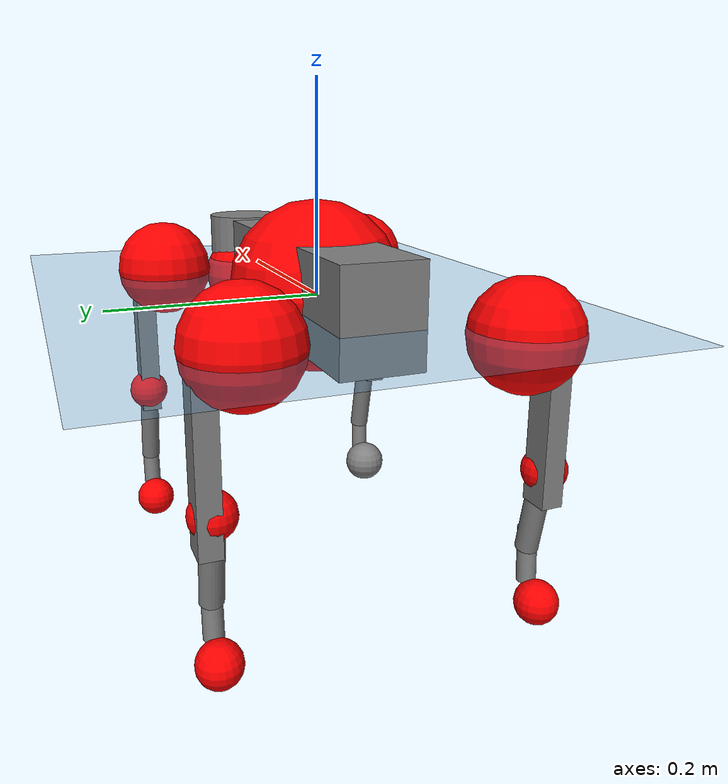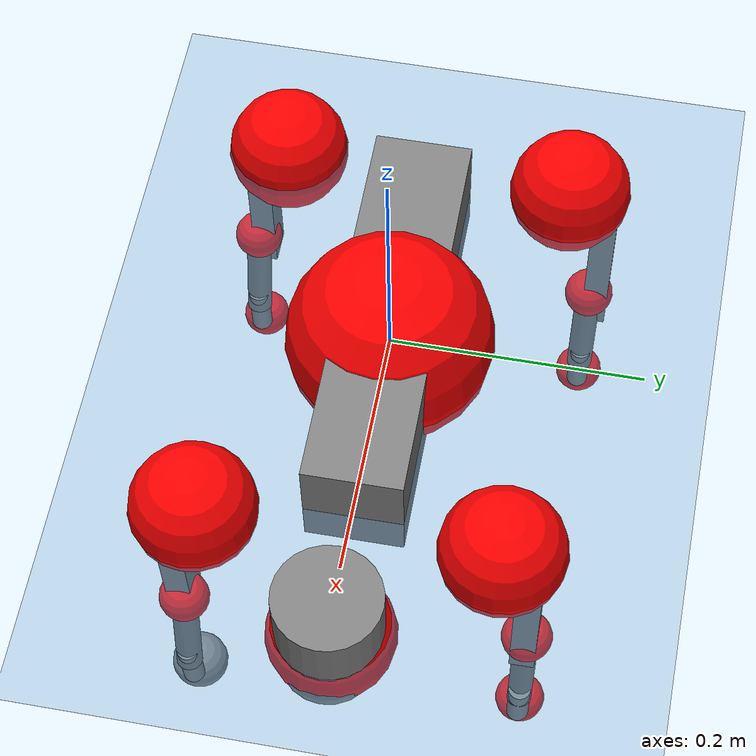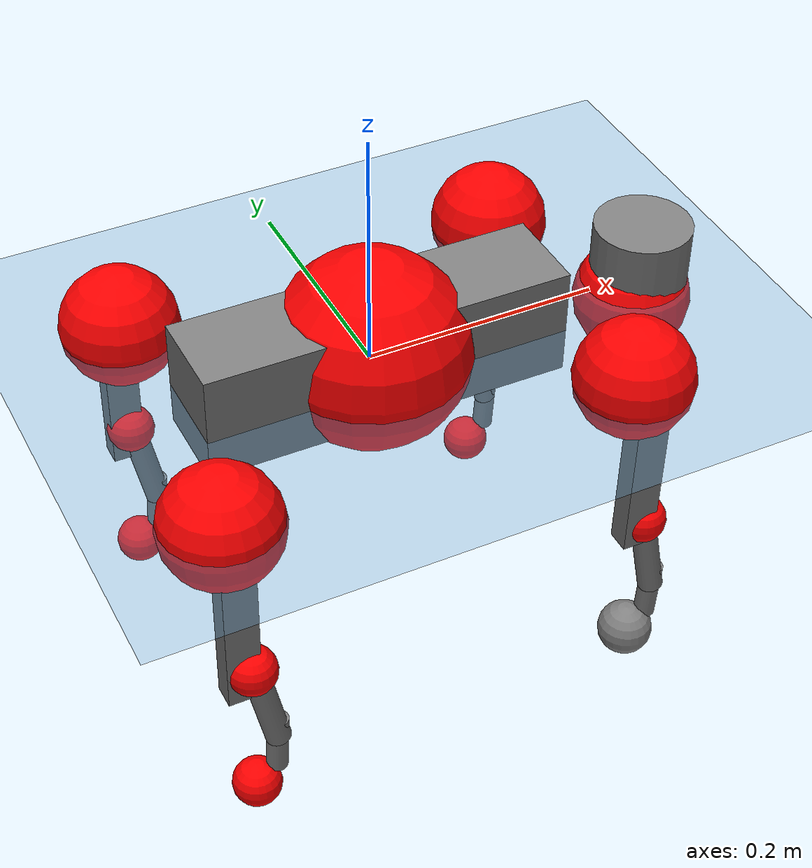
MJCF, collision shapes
<mujoco model="go2">
  <compiler angle="radian" assetdir="assets" balanceinertia="true" inertiafromgeom="false"/>

  <option timestep="0.005" density="1.2" viscosity="2e-05"/>

  <size nkey="1"/>

  <visual>
    <quality shadowsize="8192"/>
    <map shadowclip="0.5"/>
  </visual>

  <default>
    <default class="/">
      <geom contype="0" conaffinity="0" group="1" solref="-1000 -80"/>
      <site size="0.01 0.005 0.005" group="5"/>
      <general forcelimited="true" biastype="affine" gainprm="20" biasprm="0 -20 -0.5"/>
      <default class="go2">
        <joint armature="0.01" damping="0.01" frictionloss="0.2"/>
        <geom condim="1" margin="0.001"/>
        <default class="visual">
          <geom type="mesh" group="2"/>
        </default>
        <default class="collision">
          <geom group="3"/>
          <default class="foot">
            <geom size="0.022 0 0" condim="6" priority="1" friction="0.8 0.02 0.01" solimp="0.015 1 0.022"/>
          </default>
        </default>
        <default class="reward_collision_sphere">
          <geom group="5" rgba="1 0 0 1"/>
        </default>
      </default>
    </default>
  </default>

  <asset>
    <texture type="skybox" colorspace="auto" name="//unnamed_texture_0" builtin="gradient" rgb1="0.95 0.95 0.95" rgb2="0.95 0.95 0.95" width="100" height="600"/>
    <texture type="2d" colorspace="auto" name="texplane" builtin="checker" rgb1="0.345 0.575 0.748" rgb2="0.345 0.575 0.748" markrgb="1 1 1" width="512" height="512"/>
    <material name="MatPlane" class="/" texture="texplane" texuniform="true" texrepeat="2 2" specular="0.9"/>
    <material name="metal" class="/" rgba="0.9 0.95 0.95 1"/>
    <material name="black" class="/" rgba="0 0 0 1"/>
    <material name="white" class="/"/>
    <material name="gray" class="/" rgba="0.671705 0.692426 0.77427 1"/>
    <mesh name="base_0" class="/" file="base_0.obj"/>
    <mesh name="base_1" class="/" file="base_1.obj"/>
    <mesh name="base_2" class="/" file="base_2.obj"/>
    <mesh name="base_3" class="/" file="base_3.obj"/>
    <mesh name="base_4" class="/" file="base_4.obj"/>
    <mesh name="hip_0" class="/" file="hip_0.obj"/>
    <mesh name="hip_1" class="/" file="hip_1.obj"/>
    <mesh name="thigh_0" class="/" file="thigh_0.obj"/>
    <mesh name="thigh_1" class="/" file="thigh_1.obj"/>
    <mesh name="thigh_mirror_0" class="/" file="thigh_mirror_0.obj"/>
    <mesh name="thigh_mirror_1" class="/" file="thigh_mirror_1.obj"/>
    <mesh name="calf_0" class="/" file="calf_0.obj"/>
    <mesh name="calf_1" class="/" file="calf_1.obj"/>
    <mesh name="calf_mirror_0" class="/" file="calf_mirror_0.obj"/>
    <mesh name="calf_mirror_1" class="/" file="calf_mirror_1.obj"/>
    <mesh name="foot" class="/" file="foot.obj"/>
  </asset>

  <worldbody>
    <geom name="floor" class="/" size="100 100 0.125" type="plane" group="0" material="MatPlane"/>
    <light name="toplight_shadow" class="/" pos="0 0 5" dir="0.0990148 0.0990148 -0.990148" type="directional" ambient="0.04 0.04 0.04" diffuse="0.55 0.55 0.55" specular="0.12 0.12 0.12"/>
    <light name="toplight_fill" class="/" pos="0 0 5" dir="0.0990148 0.0990148 -0.990148" type="directional" castshadow="false" ambient="0.04 0.04 0.04" diffuse="0.3 0.3 0.3" specular="0.08 0.08 0.08"/>
    <body name="trunk" childclass="go2" pos="0.00182921 0.000590217 0.00891486" quat="0.999992 -0.000611986 0.00345754 0.00182832">
      <inertial pos="0.0208809 -0.00607683 -0.00376445" quat="0.0182743 0.733382 -0.0164384 0.679373" mass="3.59955" diaginertia="0.0438186 0.0792906 0.0020129"/>
      <joint name="//unnamed_joint_0" type="free" armature="0" damping="0" frictionloss="0"/>
      <geom name="//unnamed_geom_1" class="visual" material="black" mesh="base_0"/>
      <geom name="//unnamed_geom_2" class="visual" material="black" mesh="base_1"/>
      <geom name="//unnamed_geom_3" class="visual" material="black" mesh="base_2"/>
      <geom name="//unnamed_geom_4" class="visual" material="white" mesh="base_3"/>
      <geom name="//unnamed_geom_5" class="visual" material="gray" mesh="base_4"/>
      <geom name="trunk_1" class="collision" size="0.154737 0.0384581 0.04689" type="box"/>
      <geom name="trunk_2" class="collision" size="0.0411316 0.0370184" pos="0.245744 0 0.00619641" type="cylinder"/>
      <geom name="trunk_3" class="collision" size="0.0386637" pos="0.252642 0 -0.0371784"/>
      <geom name="//unnamed_geom_9" class="reward_collision_sphere" size="0.0822632"/>
      <geom name="//unnamed_geom_10" class="reward_collision_sphere" size="0.0493579" pos="0.241433 0 -0.0278838"/>
      <site name="imu" pos="-0.0157879 -0.015954 0.0541007" size="0.00822632"/>
      <camera name="track" pos="0 -1.97199 0" quat="0.707107 0.707107 0 0" mode="trackcom"/>
      <camera name="ego_camera" pos="0.269025 0 0.0278838" quat="-0.5 -0.5 0.5 0.5"/>
      <body name="FL_hip" pos="0.166509 0.0456228 -0.00220824" quat="1 8.6059e-05 0.000539723 0.00048412">
        <inertial pos="0.00276127 0.00410376 0.00861423" quat="0.48654 0.517708 0.474471 0.519745" mass="0.394819" diaginertia="0.000410088 0.000575232 4.56329e-05"/>
        <joint name="FL_hip_joint" pos="0 0 0" axis="0.999372 0.0307809 0.0175814" stiffness="0.0259264" range="-1.05613 0.994606" armature="0.00812988" damping="0.0325202" frictionloss="0.14337"/>
        <geom name="//unnamed_geom_11" class="visual" material="metal" mesh="hip_0"/>
        <geom name="//unnamed_geom_12" class="visual" material="gray" mesh="hip_1"/>
        <geom name="//unnamed_geom_13" class="collision" size="0.0378411 0.0164526" pos="0 0.0788796 0" quat="0.707107 0.707107 0 0" type="cylinder"/>
        <geom name="//unnamed_geom_14" class="reward_collision_sphere" size="0.0493579" pos="0 0.0690197 0"/>
        <body name="FL_thigh" pos="0.00594832 0.0927377 -0.00643932" quat="1 -0.000245322 7.90404e-05 -5.96165e-06">
          <inertial pos="-0.00153829 -0.0207795 -0.0222632" quat="0.829472 0.0845462 -0.0208143 0.55172" mass="0.703235" diaginertia="0.00312085 0.0059311 9.36028e-05"/>
          <joint name="FL_thigh_joint" pos="0 0 0" axis="-0.00260906 0.999996 0.000573482" stiffness="0.0105055" range="-1.51308 3.48766" armature="0.00998946" damping="0" frictionloss="0.162732"/>
          <geom name="//unnamed_geom_15" class="visual" material="metal" mesh="thigh_0"/>
          <geom name="//unnamed_geom_16" class="visual" material="gray" mesh="thigh_1"/>
          <geom name="//unnamed_geom_17" class="collision" size="0.0876103 0.0100772 0.0139847" pos="0 0 -0.0659917" quat="0.707107 0 0.707107 0" type="box"/>
          <body name="FL_calf" pos="-0.0026475 0.00116062 -0.132188" quat="1 -0.000215898 -2.84034e-06 -1.14908e-05">
            <inertial pos="0.0154573 0.0076553 -0.0892715" quat="0.710538 -0.00435624 0.00330291 0.703637" mass="0.132798" diaginertia="0.000760346 0.00136554 4.70215e-06"/>
            <joint name="FL_calf_joint" pos="0 0 0" axis="0.00158586 0.999979 -0.00629978" stiffness="0.0165333" range="-2.52684 -0.901429" armature="0.00828516" damping="0.00147585" frictionloss="0.0879978"/>
            <geom name="//unnamed_geom_18" class="visual" material="gray" mesh="calf_0"/>
            <geom name="//unnamed_geom_19" class="visual" material="black" mesh="calf_1"/>
            <geom name="FL_calf0" class="collision" size="0.00987159 0.0493579" pos="0.00689809 0 -0.0371784" quat="0.994493 0 -0.104807 0" type="cylinder"/>
            <geom name="//unnamed_geom_21" class="collision" size="0.00904895 0.0267355" pos="0.0172452 0 -0.0917068" quat="0.999688 0 0.0249974 0" type="cylinder"/>
            <geom name="//unnamed_geom_22" class="visual" pos="0 0 -0.131983" quat="1 0 0 0" material="black" mesh="foot"/>
            <geom name="FL_foot" class="foot" size="0.0202302" pos="-0.00172452 0 -0.131983"/>
            <geom name="//unnamed_geom_24" class="reward_collision_sphere" size="0.0205658"/>
            <geom name="//unnamed_geom_25" class="reward_collision_sphere" size="0.0205658" pos="-0.00172452 0 -0.131983"/>
            <site name="FL_foot" class="foot" pos="-0.00172452 0 -0.131983" size="0.00822632"/>
          </body>
        </body>
      </body>
      <body name="FR_hip" pos="0.169855 -0.0490213 -0.00169888" quat="0.999989 0.00442768 -0.00138357 -0.000460307">
        <inertial pos="-0.00341511 -0.00131174 0.00100033" quat="0.50933 0.517237 0.459257 0.511988" mass="0.334659" diaginertia="0.000429118 0.000545148 4.48318e-05"/>
        <joint name="FR_hip_joint" pos="0 0 0" axis="0.999903 -0.0112551 -0.00823911" stiffness="0.0334119" range="-0.87142 1.09889" armature="0.0084359" damping="0.0265208" frictionloss="0.132333"/>
        <geom name="//unnamed_geom_26" class="visual" pos="0 3.19153e-09 1.36891e-07" quat="4.63268e-05 1 0 0" material="metal" mesh="hip_0"/>
        <geom name="//unnamed_geom_27" class="visual" pos="0 5.17385e-09 -3.38584e-07" quat="4.63268e-05 1 0 0" material="gray" mesh="hip_1"/>
        <geom name="//unnamed_geom_28" class="collision" size="0.0378411 0.0164526" pos="0 -0.0788796 0" quat="0.707107 0.707107 0 0" type="cylinder"/>
        <geom name="//unnamed_geom_29" class="reward_collision_sphere" size="0.0493579" pos="0 -0.0690197 0"/>
        <body name="FR_thigh" pos="0.00270354 -0.0904833 -0.00392435" quat="1 0.000753522 0.000310136 -1.03776e-06">
          <inertial pos="-0.000456331 0.0242348 -0.0202983" quat="0.552021 -0.0189325 0.0844337 0.829328" mass="0.602229" diaginertia="0.00292295 0.00589151 7.92677e-05"/>
          <joint name="FR_thigh_joint" pos="0 0 0" axis="0.000623816 -0.999999 -0.00085877" range="-3.48283 1.63073" armature="0.00896466" damping="0.0545041" frictionloss="0.211474"/>
          <geom name="//unnamed_geom_30" class="visual" material="metal" mesh="thigh_mirror_0"/>
          <geom name="//unnamed_geom_31" class="visual" material="gray" mesh="thigh_mirror_1"/>
          <geom name="//unnamed_geom_32" class="collision" size="0.0876103 0.0100772 0.0139847" pos="0 0 -0.0659917" quat="0.707107 0 0.707107 0" type="box"/>
          <body name="FR_calf" pos="0.00863318 0.00239163 -0.137537" quat="1 1.70509e-05 0.000192788 0.000447511">
            <inertial pos="0.00497839 0.00820432 -0.0934667" quat="0.680763 0.028281 -0.0150026 0.731804" mass="0.144427" diaginertia="0.000758926 0.00136513 5.5723e-06"/>
            <joint name="FR_calf_joint" pos="0 0 0" axis="-0.00593392 -0.999954 -0.00748586" range="0.807209 2.69334" armature="0.00826992" damping="0.0292333" frictionloss="0.182265"/>
            <geom name="//unnamed_geom_33" class="visual" material="gray" mesh="calf_mirror_0"/>
            <geom name="//unnamed_geom_34" class="visual" material="black" mesh="calf_mirror_1"/>
            <geom name="FR_calf0" class="collision" size="0.0106942 0.0493579" pos="0.00862261 0 -0.0371784" quat="0.995004 0 -0.0998334 0" type="cylinder"/>
            <geom name="//unnamed_geom_36" class="collision" size="0.00904895 0.0267355" pos="0.0172452 0 -0.0917068" quat="0.999688 0 0.0249974 0" type="cylinder"/>
            <geom name="//unnamed_geom_37" class="visual" pos="0 0 -0.131983" quat="1 0 0 0" material="black" mesh="foot"/>
            <geom name="FR_foot" class="foot" size="0.0235953" pos="-0.00172452 0 -0.131983"/>
            <geom name="//unnamed_geom_39" class="reward_collision_sphere" size="0.0205658"/>
            <geom name="//unnamed_geom_40" class="reward_collision_sphere" size="0.0205658" pos="-0.00172452 0 -0.131983"/>
            <site name="FR_foot" class="foot" pos="-0.00172452 0 -0.131983" size="0.00822632"/>
          </body>
        </body>
      </body>
      <body name="RL_hip" pos="-0.166105 0.0499902 -0.00568357" quat="1 -0.000102285 -1.81936e-05 -0.000162935">
        <inertial pos="0.00481029 0.0093155 0.00886655" quat="0.501902 0.497064 0.500269 0.500753" mass="0.382726" diaginertia="0.000449262 0.000569039 4.86599e-05"/>
        <joint name="RL_hip_joint" pos="0 0 0" axis="-0.999424 0.0339329 -0.00106333" stiffness="0.00807059" range="-0.909675 0.893143" armature="0.00545867" damping="0" frictionloss="0.1647"/>
        <geom name="//unnamed_geom_41" class="visual" pos="-2.11361e-09 0 -4.14315e-07" quat="4.63268e-05 0 1 0" material="metal" mesh="hip_0"/>
        <geom name="//unnamed_geom_42" class="visual" pos="-3.42641e-09 0 -3.67439e-07" quat="4.63268e-05 0 1 0" material="gray" mesh="hip_1"/>
        <geom name="//unnamed_geom_43" class="collision" size="0.0378411 0.0164526" pos="0 0.0788796 0" quat="0.707107 0.707107 0 0" type="cylinder"/>
        <geom name="//unnamed_geom_44" class="reward_collision_sphere" size="0.0493579" pos="0 0.0690197 0"/>
        <body name="RL_thigh" pos="0.00348569 0.100726 -0.00936334" quat="0.999997 0.00109315 0.00199502 -0.000950734">
          <inertial pos="-0.0128523 -0.0170311 -0.0107673" quat="0.829892 0.0838731 -0.0208266 0.55119" mass="0.546234" diaginertia="0.00223033 0.00485441 6.62348e-05"/>
          <joint name="RL_thigh_joint" pos="0 0 0" axis="0.0504476 0.998687 -0.00885727" range="-0.446249 4.56953" armature="0.00855345" damping="0.0547641" frictionloss="0.150324"/>
          <geom name="//unnamed_geom_45" class="visual" material="metal" mesh="thigh_0"/>
          <geom name="//unnamed_geom_46" class="visual" material="gray" mesh="thigh_1"/>
          <geom name="//unnamed_geom_47" class="collision" size="0.0876103 0.0100772 0.0139847" pos="0 0 -0.0659917" quat="0.707107 0 0.707107 0" type="box"/>
          <body name="RL_calf" pos="0.00438068 -0.00606637 -0.124612" quat="0.999996 -0.00211737 -0.000133651 0.00184378">
            <inertial pos="0.0139913 -0.00503105 -0.0784376" quat="0.723478 0.0333054 -0.00958716 0.689477" mass="0.145778" diaginertia="0.000748501 0.00148773 5.0473e-06"/>
            <joint name="RL_calf_joint" pos="0 0 0" axis="0.0133135 0.999889 -0.00665216" range="-2.69658 -0.637422" armature="0.00517391" damping="0.050983" frictionloss="0.165628"/>
            <geom name="//unnamed_geom_48" class="visual" material="gray" mesh="calf_0"/>
            <geom name="//unnamed_geom_49" class="visual" material="black" mesh="calf_1"/>
            <geom name="RL_calf0" class="collision" size="0.0106942 0.0493579" pos="0.00862261 0 -0.0371784" quat="0.995004 0 -0.0998334 0" type="cylinder"/>
            <geom name="//unnamed_geom_51" class="collision" size="0.00904895 0.0267355" pos="0.0172452 0 -0.0917068" quat="0.999688 0 0.0249974 0" type="cylinder"/>
            <geom name="//unnamed_geom_52" class="visual" pos="0 0 -0.131983" quat="1 0 0 0" material="black" mesh="foot"/>
            <geom name="RL_foot" class="foot" size="0.017946" pos="-0.00172452 0 -0.131983"/>
            <geom name="//unnamed_geom_54" class="reward_collision_sphere" size="0.0205658"/>
            <geom name="//unnamed_geom_55" class="reward_collision_sphere" size="0.0205658" pos="-0.00172452 0 -0.131983"/>
            <site name="RL_foot" class="foot" pos="-0.00172452 0 -0.131983" size="0.00822632"/>
          </body>
        </body>
      </body>
      <body name="RR_hip" pos="-0.176633 -0.0483099 -0.0175122" quat="1 -2.40925e-07 -8.02563e-06 4.83077e-05">
        <inertial pos="0.0106252 0.00161489 -0.00262498" quat="0.491338 0.485941 0.530806 0.490605" mass="0.377799" diaginertia="0.000335932 0.000503219 3.76827e-05"/>
        <joint name="RR_hip_joint" pos="0 0 0" axis="-0.998755 0.0342916 0.0362292" stiffness="0.00690961" range="-1.00952 1.04822" armature="0.00817469" damping="0.0130569" frictionloss="0.0841604"/>
        <geom name="//unnamed_geom_56" class="visual" pos="2.11789e-09 3.19153e-09 -5.51207e-07" quat="2.14617e-09 4.63268e-05 4.63268e-05 -1" material="metal" mesh="hip_0"/>
        <geom name="//unnamed_geom_57" class="visual" pos="3.41581e-09 5.17385e-09 -2.88545e-08" quat="2.14617e-09 4.63268e-05 4.63268e-05 -1" material="gray" mesh="hip_1"/>
        <geom name="//unnamed_geom_58" class="collision" size="0.0378411 0.0164526" pos="0 -0.0788796 0" quat="0.707107 0.707107 0 0" type="cylinder"/>
        <geom name="//unnamed_geom_59" class="reward_collision_sphere" size="0.0493579" pos="0 -0.0690197 0"/>
        <body name="RR_thigh" pos="-0.00247226 -0.095557 0.000410306" quat="0.999999 -0.000201389 0.00114541 0.000611175">
          <inertial pos="-0.00589194 0.0244894 -0.0120886" quat="0.566016 -0.0273485 0.0914551 0.818849" mass="0.718142" diaginertia="0.00260098 0.00537665 8.11501e-05"/>
          <joint name="RR_thigh_joint" pos="0 0 0" axis="0.00198137 -0.99998 0.00608432" stiffness="0.00724523" range="-4.53143 0.633149" armature="0.008686" damping="0.0065586" frictionloss="0.160874"/>
          <geom name="//unnamed_geom_60" class="visual" material="metal" mesh="thigh_mirror_0"/>
          <geom name="//unnamed_geom_61" class="visual" material="gray" mesh="thigh_mirror_1"/>
          <geom name="//unnamed_geom_62" class="collision" size="0.0876103 0.0100772 0.0139847" pos="0 0 -0.0659917" quat="0.707107 0 0.707107 0" type="box"/>
          <body name="RR_calf" pos="0.00797197 -0.00588387 -0.126866" quat="0.999987 -0.00423185 -0.00174363 -0.00209672">
            <inertial pos="0.00502644 0.00168114 -0.0899929" quat="0.68853 -0.0159172 -0.0286679 0.724466" mass="0.126604" diaginertia="0.000666568 0.00126312 5.10782e-06"/>
            <joint name="RR_calf_joint" pos="0 0 0" axis="0.0459358 -0.998921 0.00687087" stiffness="0.0409911" range="0.701513 2.7097" armature="0.00858824" damping="0.0442605" frictionloss="0.161718"/>
            <geom name="//unnamed_geom_63" class="visual" material="gray" mesh="calf_mirror_0"/>
            <geom name="//unnamed_geom_64" class="visual" material="black" mesh="calf_mirror_1"/>
            <geom name="RR_calf0" class="collision" size="0.0106942 0.0493579" pos="0.00862261 0 -0.0371784" quat="0.995004 0 -0.0998334 0" type="cylinder"/>
            <geom name="//unnamed_geom_66" class="collision" size="0.00904895 0.0267355" pos="0.0172452 0 -0.0917068" quat="0.999688 0 0.0249974 0" type="cylinder"/>
            <geom name="//unnamed_geom_67" class="visual" pos="0 0 -0.131983" quat="1 0 0 0" material="black" mesh="foot"/>
            <geom name="RR_foot" class="foot" size="0.0181726" pos="-0.00172452 0 -0.131983"/>
            <geom name="//unnamed_geom_69" class="reward_collision_sphere" size="0.0205658"/>
            <geom name="//unnamed_geom_70" class="reward_collision_sphere" size="0.0205658" pos="-0.00172452 0 -0.131983"/>
            <site name="RR_foot" class="foot" pos="-0.00172452 0 -0.131983" size="0.00822632"/>
          </body>
        </body>
      </body>
    </body>
  </worldbody>

  <contact>
    <pair class="/" geom1="floor" geom2="FL_foot" name="//unnamed_contact_0"/>
    <pair class="/" geom1="floor" geom2="FR_foot" name="//unnamed_contact_1"/>
    <pair class="/" geom1="floor" geom2="RL_foot" name="//unnamed_contact_2"/>
    <pair class="/" geom1="floor" geom2="RR_foot" name="//unnamed_contact_3"/>
  </contact>

  <actuator>
    <general name="FL_hip" class="/" joint="FL_hip_joint" forcerange="-18.1051 18.1051" gainprm="16.9653" biasprm="0 -16.9653 -0.406427"/>
    <general name="FL_thigh" class="/" joint="FL_thigh_joint" forcerange="-20.4773 20.4773" gainprm="16.9653" biasprm="0 -16.9653 -0.406427"/>
    <general name="FL_calf" class="/" joint="FL_calf_joint" forcerange="-33.2155 33.2155" gainprm="16.9653" biasprm="0 -16.9653 -0.406427"/>
    <general name="FR_hip" class="/" joint="FR_hip_joint" forcerange="-18.3284 18.3284" gainprm="16.9653" biasprm="0 -16.9653 -0.406427"/>
    <general name="FR_thigh" class="/" joint="FR_thigh_joint" forcerange="-17.5016 17.5016" gainprm="16.9653" biasprm="0 -16.9653 -0.406427"/>
    <general name="FR_calf" class="/" joint="FR_calf_joint" forcerange="-36.3584 36.3584" gainprm="16.9653" biasprm="0 -16.9653 -0.406427"/>
    <general name="RL_hip" class="/" joint="RL_hip_joint" forcerange="-18.7906 18.7906" gainprm="16.9653" biasprm="0 -16.9653 -0.406427"/>
    <general name="RL_thigh" class="/" joint="RL_thigh_joint" forcerange="-25.9232 25.9232" gainprm="16.9653" biasprm="0 -16.9653 -0.406427"/>
    <general name="RL_calf" class="/" joint="RL_calf_joint" forcerange="-27.0321 27.0321" gainprm="16.9653" biasprm="0 -16.9653 -0.406427"/>
    <general name="RR_hip" class="/" joint="RR_hip_joint" forcerange="-19.0533 19.0533" gainprm="16.9653" biasprm="0 -16.9653 -0.406427"/>
    <general name="RR_thigh" class="/" joint="RR_thigh_joint" forcerange="-19.8881 19.8881" gainprm="16.9653" biasprm="0 -16.9653 -0.406427"/>
    <general name="RR_calf" class="/" joint="RR_calf_joint" forcerange="-32.6785 32.6785" gainprm="16.9653" biasprm="0 -16.9653 -0.406427"/>
  </actuator>

  <sensor>
    <gyro site="imu" name="imu_angular_velocity"/>
    <velocimeter site="imu" name="imu_linear_velocity"/>
    <framelinvel objtype="site" objname="FL_foot" name="FL_foot_global_linear_velocity"/>
    <framelinvel objtype="site" objname="FR_foot" name="FR_foot_global_linear_velocity"/>
    <framelinvel objtype="site" objname="RL_foot" name="RL_foot_global_linear_velocity"/>
    <framelinvel objtype="site" objname="RR_foot" name="RR_foot_global_linear_velocity"/>
  </sensor>

  <keyframe>
    <key name="home" qpos="0 0 0.325 1 0 0 0 0.1 0.8 -1.5 -0.1 -0.8 1.5 -0.1 0.8 -1.5 0.1 -0.8 1.5"/>
  </keyframe>
</mujoco>
